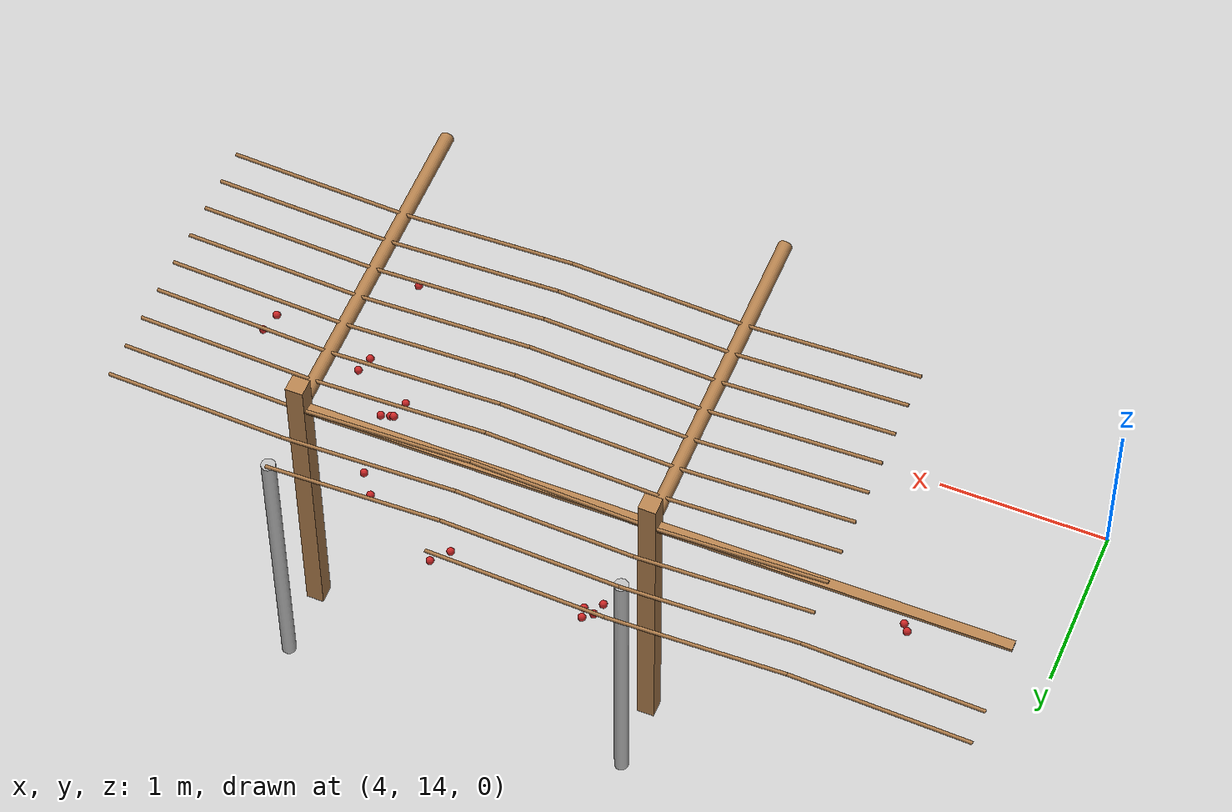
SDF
<sdf version="1.4">
 <model name="pergola">
  <include><name>post_41</name><pose>6.0 16.0 0 0 0 0</pose><uri>model://post</uri></include>
  <include><name>post_52</name><pose>8.0 16.0 0 0 0 0</pose><uri>model://post</uri></include>
  <link name="beam_30">
   <pose>5.0 16.0 1.81 0 0 0</pose>
   <collision name="collision"><geometry><box><size>2.0 0.06 0.02</size></box></geometry></collision>
   <visual name="visual">
    <geometry><box><size>2.0 0.06 0.02</size></box></geometry>
    <material><script><name>Gazebo/Wood</name></script></material>
   </visual>
   <inertial>
    <mass>5</mass>
    <inertia>
     <ixx>0.0016666666666666668</ixx>
     <ixy>0.0</ixy>
     <ixz>0.0</ixz>
     <iyy>1.6681666666666664</iyy>
     <iyz>0.0</iyz>
     <izz>1.6668333333333332</izz>
    </inertia>
   </inertial>
  </link>
  <link name="beam_41">
   <pose>7.0 16.0 1.81 0 0 0</pose>
   <collision name="collision"><geometry><box><size>2.0 0.06 0.02</size></box></geometry></collision>
   <visual name="visual">
    <geometry><box><size>2.0 0.06 0.02</size></box></geometry>
    <material><script><name>Gazebo/Wood</name></script></material>
   </visual>
   <inertial>
    <mass>5</mass>
    <inertia>
     <ixx>0.0016666666666666668</ixx>
     <ixy>0.0</ixy>
     <ixz>0.0</ixz>
     <iyy>1.6681666666666664</iyy>
     <iyz>0.0</iyz>
     <izz>1.6668333333333332</izz>
    </inertia>
   </inertial>
  </link>
  <include><name>tree_38</name><pose>6.0 16.4 0 0 0 0</pose><uri>model://tree_trunk</uri></include>
  <include><name>tree_48</name><pose>8.0 16.4 0 0 0 0</pose><uri>model://tree_trunk</uri></include>
  <link name="baseBranch_37">
   <pose>6.0 15.0 1.8 1.5707963267948966 0 0</pose>
   <collision name="collision">
    <geometry><cylinder><radius>0.04</radius><length>1.94</length></cylinder></geometry>
   </collision>
   <visual name="visual">
    <geometry><cylinder><radius>0.04</radius><length>1.94</length></cylinder></geometry>
    <material><script><name>Gazebo/WoodFloor</name></script></material>
   </visual>
   <inertial>
    <mass>10</mass>
    <inertia>
     <ixx>3.140333333333333</ixx>
     <ixy>0.0</ixy>
     <ixz>0.0</ixz>
     <iyy>3.140333333333333</iyy>
     <iyz>0.0</iyz>
     <izz>0.008</izz>
    </inertia>
   </inertial>
  </link>
  <link name="baseBranch_47">
   <pose>8.0 15.0 1.8 1.5707963267948966 0 0</pose>
   <collision name="collision">
    <geometry><cylinder><radius>0.04</radius><length>1.94</length></cylinder></geometry>
   </collision>
   <visual name="visual">
    <geometry><cylinder><radius>0.04</radius><length>1.94</length></cylinder></geometry>
    <material><script><name>Gazebo/WoodFloor</name></script></material>
   </visual>
   <inertial>
    <mass>10</mass>
    <inertia>
     <ixx>3.140333333333333</ixx>
     <ixy>0.0</ixy>
     <ixz>0.0</ixz>
     <iyy>3.140333333333333</iyy>
     <iyz>0.0</iyz>
     <izz>0.008</izz>
    </inertia>
   </inertial>
  </link>
  <link name="vine_547">
   <pose>5.5 14.63 1.85 0 -1.5208379310729538 0</pose>
   <collision name="collision">
    <geometry><cylinder><radius>0.01</radius><length>1.0012492197250393</length></cylinder></geometry>
   </collision>
   <visual name="visual">
    <geometry><cylinder><radius>0.01</radius><length>1.0012492197250393</length></cylinder></geometry>
    <material><script><name>Gazebo/WoodFloor</name></script></material>
   </visual>
   <inertial>
    <mass>5</mass>
    <inertia>
     <ixx>0.41783333333333345</ixx>
     <ixy>0.0</ixy>
     <ixz>0.0</ixz>
     <iyy>0.41783333333333345</iyy>
     <iyz>0.0</iyz>
     <izz>0.00025</izz>
    </inertia>
   </inertial>
  </link>
  <link name="vine_549">
   <pose>5.5 14.83 1.85 0 -1.5208379310729538 0</pose>
   <collision name="collision">
    <geometry><cylinder><radius>0.01</radius><length>1.0012492197250393</length></cylinder></geometry>
   </collision>
   <visual name="visual">
    <geometry><cylinder><radius>0.01</radius><length>1.0012492197250393</length></cylinder></geometry>
    <material><script><name>Gazebo/WoodFloor</name></script></material>
   </visual>
   <inertial>
    <mass>5</mass>
    <inertia>
     <ixx>0.41783333333333345</ixx>
     <ixy>0.0</ixy>
     <ixz>0.0</ixz>
     <iyy>0.41783333333333345</iyy>
     <iyz>0.0</iyz>
     <izz>0.00025</izz>
    </inertia>
   </inertial>
  </link>
  <link name="vine_551">
   <pose>5.5 15.03 1.85 0 -1.5208379310729538 0</pose>
   <collision name="collision">
    <geometry><cylinder><radius>0.01</radius><length>1.0012492197250393</length></cylinder></geometry>
   </collision>
   <visual name="visual">
    <geometry><cylinder><radius>0.01</radius><length>1.0012492197250393</length></cylinder></geometry>
    <material><script><name>Gazebo/WoodFloor</name></script></material>
   </visual>
   <inertial>
    <mass>5</mass>
    <inertia>
     <ixx>0.41783333333333345</ixx>
     <ixy>0.0</ixy>
     <ixz>0.0</ixz>
     <iyy>0.41783333333333345</iyy>
     <iyz>0.0</iyz>
     <izz>0.00025</izz>
    </inertia>
   </inertial>
  </link>
  <link name="vine_553">
   <pose>5.5 15.23 1.85 0 -1.5208379310729538 0</pose>
   <collision name="collision">
    <geometry><cylinder><radius>0.01</radius><length>1.0012492197250393</length></cylinder></geometry>
   </collision>
   <visual name="visual">
    <geometry><cylinder><radius>0.01</radius><length>1.0012492197250393</length></cylinder></geometry>
    <material><script><name>Gazebo/WoodFloor</name></script></material>
   </visual>
   <inertial>
    <mass>5</mass>
    <inertia>
     <ixx>0.41783333333333345</ixx>
     <ixy>0.0</ixy>
     <ixz>0.0</ixz>
     <iyy>0.41783333333333345</iyy>
     <iyz>0.0</iyz>
     <izz>0.00025</izz>
    </inertia>
   </inertial>
  </link>
  <link name="vine_555">
   <pose>5.5 15.43 1.85 0 -1.5208379310729538 0</pose>
   <collision name="collision">
    <geometry><cylinder><radius>0.01</radius><length>1.0012492197250393</length></cylinder></geometry>
   </collision>
   <visual name="visual">
    <geometry><cylinder><radius>0.01</radius><length>1.0012492197250393</length></cylinder></geometry>
    <material><script><name>Gazebo/WoodFloor</name></script></material>
   </visual>
   <inertial>
    <mass>5</mass>
    <inertia>
     <ixx>0.41783333333333345</ixx>
     <ixy>0.0</ixy>
     <ixz>0.0</ixz>
     <iyy>0.41783333333333345</iyy>
     <iyz>0.0</iyz>
     <izz>0.00025</izz>
    </inertia>
   </inertial>
  </link>
  <link name="vine_557">
   <pose>5.5 15.63 1.85 0 -1.5208379310729538 0</pose>
   <collision name="collision">
    <geometry><cylinder><radius>0.01</radius><length>1.0012492197250393</length></cylinder></geometry>
   </collision>
   <visual name="visual">
    <geometry><cylinder><radius>0.01</radius><length>1.0012492197250393</length></cylinder></geometry>
    <material><script><name>Gazebo/WoodFloor</name></script></material>
   </visual>
   <inertial>
    <mass>5</mass>
    <inertia>
     <ixx>0.41783333333333345</ixx>
     <ixy>0.0</ixy>
     <ixz>0.0</ixz>
     <iyy>0.41783333333333345</iyy>
     <iyz>0.0</iyz>
     <izz>0.00025</izz>
    </inertia>
   </inertial>
  </link>
  <link name="vine_559">
   <pose>5.5 15.83 1.85 0 -1.5208379310729538 0</pose>
   <collision name="collision">
    <geometry><cylinder><radius>0.01</radius><length>1.0012492197250393</length></cylinder></geometry>
   </collision>
   <visual name="visual">
    <geometry><cylinder><radius>0.01</radius><length>1.0012492197250393</length></cylinder></geometry>
    <material><script><name>Gazebo/WoodFloor</name></script></material>
   </visual>
   <inertial>
    <mass>5</mass>
    <inertia>
     <ixx>0.41783333333333345</ixx>
     <ixy>0.0</ixy>
     <ixz>0.0</ixz>
     <iyy>0.41783333333333345</iyy>
     <iyz>0.0</iyz>
     <izz>0.00025</izz>
    </inertia>
   </inertial>
  </link>
  <link name="vine_561">
   <pose>5.5 16.03 1.85 0 -1.5208379310729538 0</pose>
   <collision name="collision">
    <geometry><cylinder><radius>0.01</radius><length>1.0012492197250393</length></cylinder></geometry>
   </collision>
   <visual name="visual">
    <geometry><cylinder><radius>0.01</radius><length>1.0012492197250393</length></cylinder></geometry>
    <material><script><name>Gazebo/WoodFloor</name></script></material>
   </visual>
   <inertial>
    <mass>5</mass>
    <inertia>
     <ixx>0.41783333333333345</ixx>
     <ixy>0.0</ixy>
     <ixz>0.0</ixz>
     <iyy>0.41783333333333345</iyy>
     <iyz>0.0</iyz>
     <izz>0.00025</izz>
    </inertia>
   </inertial>
  </link>
  <link name="vine_563">
   <pose>5.5 16.23 1.85 0 -1.5208379310729538 0</pose>
   <collision name="collision">
    <geometry><cylinder><radius>0.01</radius><length>1.0012492197250393</length></cylinder></geometry>
   </collision>
   <visual name="visual">
    <geometry><cylinder><radius>0.01</radius><length>1.0012492197250393</length></cylinder></geometry>
    <material><script><name>Gazebo/WoodFloor</name></script></material>
   </visual>
   <inertial>
    <mass>5</mass>
    <inertia>
     <ixx>0.41783333333333345</ixx>
     <ixy>0.0</ixy>
     <ixz>0.0</ixz>
     <iyy>0.41783333333333345</iyy>
     <iyz>0.0</iyz>
     <izz>0.00025</izz>
    </inertia>
   </inertial>
  </link>
  <link name="vine_564">
   <pose>4.5 16.430000000000003 1.85 0 1.5208379310729538 0</pose>
   <collision name="collision">
    <geometry><cylinder><radius>0.01</radius><length>1.0012492197250393</length></cylinder></geometry>
   </collision>
   <visual name="visual">
    <geometry><cylinder><radius>0.01</radius><length>1.0012492197250393</length></cylinder></geometry>
    <material><script><name>Gazebo/WoodFloor</name></script></material>
   </visual>
   <inertial>
    <mass>5</mass>
    <inertia>
     <ixx>0.41783333333333345</ixx>
     <ixy>0.0</ixy>
     <ixz>0.0</ixz>
     <iyy>0.41783333333333345</iyy>
     <iyz>0.0</iyz>
     <izz>0.00025</izz>
    </inertia>
   </inertial>
  </link>
  <link name="vine_565">
   <pose>5.5 16.430000000000003 1.85 0 -1.5208379310729538 0</pose>
   <collision name="collision">
    <geometry><cylinder><radius>0.01</radius><length>1.0012492197250393</length></cylinder></geometry>
   </collision>
   <visual name="visual">
    <geometry><cylinder><radius>0.01</radius><length>1.0012492197250393</length></cylinder></geometry>
    <material><script><name>Gazebo/WoodFloor</name></script></material>
   </visual>
   <inertial>
    <mass>5</mass>
    <inertia>
     <ixx>0.41783333333333345</ixx>
     <ixy>0.0</ixy>
     <ixz>0.0</ixz>
     <iyy>0.41783333333333345</iyy>
     <iyz>0.0</iyz>
     <izz>0.00025</izz>
    </inertia>
   </inertial>
  </link>
  <link name="vine_566">
   <pose>4.5 16.630000000000003 1.85 0 1.5208379310729538 0</pose>
   <collision name="collision">
    <geometry><cylinder><radius>0.01</radius><length>1.0012492197250393</length></cylinder></geometry>
   </collision>
   <visual name="visual">
    <geometry><cylinder><radius>0.01</radius><length>1.0012492197250393</length></cylinder></geometry>
    <material><script><name>Gazebo/WoodFloor</name></script></material>
   </visual>
   <inertial>
    <mass>5</mass>
    <inertia>
     <ixx>0.41783333333333345</ixx>
     <ixy>0.0</ixy>
     <ixz>0.0</ixz>
     <iyy>0.41783333333333345</iyy>
     <iyz>0.0</iyz>
     <izz>0.00025</izz>
    </inertia>
   </inertial>
  </link>
  <link name="vine_567">
   <pose>5.5 16.630000000000003 1.85 0 -1.5208379310729538 0</pose>
   <collision name="collision">
    <geometry><cylinder><radius>0.01</radius><length>1.0012492197250393</length></cylinder></geometry>
   </collision>
   <visual name="visual">
    <geometry><cylinder><radius>0.01</radius><length>1.0012492197250393</length></cylinder></geometry>
    <material><script><name>Gazebo/WoodFloor</name></script></material>
   </visual>
   <inertial>
    <mass>5</mass>
    <inertia>
     <ixx>0.41783333333333345</ixx>
     <ixy>0.0</ixy>
     <ixz>0.0</ixz>
     <iyy>0.41783333333333345</iyy>
     <iyz>0.0</iyz>
     <izz>0.00025</izz>
    </inertia>
   </inertial>
  </link>
  <link name="vine_746">
   <pose>6.5 14.63 1.85 0 1.5208379310729538 0</pose>
   <collision name="collision">
    <geometry><cylinder><radius>0.01</radius><length>1.0012492197250393</length></cylinder></geometry>
   </collision>
   <visual name="visual">
    <geometry><cylinder><radius>0.01</radius><length>1.0012492197250393</length></cylinder></geometry>
    <material><script><name>Gazebo/WoodFloor</name></script></material>
   </visual>
   <inertial>
    <mass>5</mass>
    <inertia>
     <ixx>0.41783333333333345</ixx>
     <ixy>0.0</ixy>
     <ixz>0.0</ixz>
     <iyy>0.41783333333333345</iyy>
     <iyz>0.0</iyz>
     <izz>0.00025</izz>
    </inertia>
   </inertial>
  </link>
  <link name="vine_747">
   <pose>7.5 14.63 1.85 0 -1.5208379310729538 0</pose>
   <collision name="collision">
    <geometry><cylinder><radius>0.01</radius><length>1.0012492197250393</length></cylinder></geometry>
   </collision>
   <visual name="visual">
    <geometry><cylinder><radius>0.01</radius><length>1.0012492197250393</length></cylinder></geometry>
    <material><script><name>Gazebo/WoodFloor</name></script></material>
   </visual>
   <inertial>
    <mass>5</mass>
    <inertia>
     <ixx>0.41783333333333345</ixx>
     <ixy>0.0</ixy>
     <ixz>0.0</ixz>
     <iyy>0.41783333333333345</iyy>
     <iyz>0.0</iyz>
     <izz>0.00025</izz>
    </inertia>
   </inertial>
  </link>
  <link name="vine_748">
   <pose>6.5 14.83 1.85 0 1.5208379310729538 0</pose>
   <collision name="collision">
    <geometry><cylinder><radius>0.01</radius><length>1.0012492197250393</length></cylinder></geometry>
   </collision>
   <visual name="visual">
    <geometry><cylinder><radius>0.01</radius><length>1.0012492197250393</length></cylinder></geometry>
    <material><script><name>Gazebo/WoodFloor</name></script></material>
   </visual>
   <inertial>
    <mass>5</mass>
    <inertia>
     <ixx>0.41783333333333345</ixx>
     <ixy>0.0</ixy>
     <ixz>0.0</ixz>
     <iyy>0.41783333333333345</iyy>
     <iyz>0.0</iyz>
     <izz>0.00025</izz>
    </inertia>
   </inertial>
  </link>
  <link name="vine_749">
   <pose>7.5 14.83 1.85 0 -1.5208379310729538 0</pose>
   <collision name="collision">
    <geometry><cylinder><radius>0.01</radius><length>1.0012492197250393</length></cylinder></geometry>
   </collision>
   <visual name="visual">
    <geometry><cylinder><radius>0.01</radius><length>1.0012492197250393</length></cylinder></geometry>
    <material><script><name>Gazebo/WoodFloor</name></script></material>
   </visual>
   <inertial>
    <mass>5</mass>
    <inertia>
     <ixx>0.41783333333333345</ixx>
     <ixy>0.0</ixy>
     <ixz>0.0</ixz>
     <iyy>0.41783333333333345</iyy>
     <iyz>0.0</iyz>
     <izz>0.00025</izz>
    </inertia>
   </inertial>
  </link>
  <link name="vine_750">
   <pose>6.5 15.03 1.85 0 1.5208379310729538 0</pose>
   <collision name="collision">
    <geometry><cylinder><radius>0.01</radius><length>1.0012492197250393</length></cylinder></geometry>
   </collision>
   <visual name="visual">
    <geometry><cylinder><radius>0.01</radius><length>1.0012492197250393</length></cylinder></geometry>
    <material><script><name>Gazebo/WoodFloor</name></script></material>
   </visual>
   <inertial>
    <mass>5</mass>
    <inertia>
     <ixx>0.41783333333333345</ixx>
     <ixy>0.0</ixy>
     <ixz>0.0</ixz>
     <iyy>0.41783333333333345</iyy>
     <iyz>0.0</iyz>
     <izz>0.00025</izz>
    </inertia>
   </inertial>
  </link>
  <link name="vine_751">
   <pose>7.5 15.03 1.85 0 -1.5208379310729538 0</pose>
   <collision name="collision">
    <geometry><cylinder><radius>0.01</radius><length>1.0012492197250393</length></cylinder></geometry>
   </collision>
   <visual name="visual">
    <geometry><cylinder><radius>0.01</radius><length>1.0012492197250393</length></cylinder></geometry>
    <material><script><name>Gazebo/WoodFloor</name></script></material>
   </visual>
   <inertial>
    <mass>5</mass>
    <inertia>
     <ixx>0.41783333333333345</ixx>
     <ixy>0.0</ixy>
     <ixz>0.0</ixz>
     <iyy>0.41783333333333345</iyy>
     <iyz>0.0</iyz>
     <izz>0.00025</izz>
    </inertia>
   </inertial>
  </link>
  <link name="vine_752">
   <pose>6.5 15.23 1.85 0 1.5208379310729538 0</pose>
   <collision name="collision">
    <geometry><cylinder><radius>0.01</radius><length>1.0012492197250393</length></cylinder></geometry>
   </collision>
   <visual name="visual">
    <geometry><cylinder><radius>0.01</radius><length>1.0012492197250393</length></cylinder></geometry>
    <material><script><name>Gazebo/WoodFloor</name></script></material>
   </visual>
   <inertial>
    <mass>5</mass>
    <inertia>
     <ixx>0.41783333333333345</ixx>
     <ixy>0.0</ixy>
     <ixz>0.0</ixz>
     <iyy>0.41783333333333345</iyy>
     <iyz>0.0</iyz>
     <izz>0.00025</izz>
    </inertia>
   </inertial>
  </link>
  <link name="vine_753">
   <pose>7.5 15.23 1.85 0 -1.5208379310729538 0</pose>
   <collision name="collision">
    <geometry><cylinder><radius>0.01</radius><length>1.0012492197250393</length></cylinder></geometry>
   </collision>
   <visual name="visual">
    <geometry><cylinder><radius>0.01</radius><length>1.0012492197250393</length></cylinder></geometry>
    <material><script><name>Gazebo/WoodFloor</name></script></material>
   </visual>
   <inertial>
    <mass>5</mass>
    <inertia>
     <ixx>0.41783333333333345</ixx>
     <ixy>0.0</ixy>
     <ixz>0.0</ixz>
     <iyy>0.41783333333333345</iyy>
     <iyz>0.0</iyz>
     <izz>0.00025</izz>
    </inertia>
   </inertial>
  </link>
  <link name="vine_754">
   <pose>6.5 15.43 1.85 0 1.5208379310729538 0</pose>
   <collision name="collision">
    <geometry><cylinder><radius>0.01</radius><length>1.0012492197250393</length></cylinder></geometry>
   </collision>
   <visual name="visual">
    <geometry><cylinder><radius>0.01</radius><length>1.0012492197250393</length></cylinder></geometry>
    <material><script><name>Gazebo/WoodFloor</name></script></material>
   </visual>
   <inertial>
    <mass>5</mass>
    <inertia>
     <ixx>0.41783333333333345</ixx>
     <ixy>0.0</ixy>
     <ixz>0.0</ixz>
     <iyy>0.41783333333333345</iyy>
     <iyz>0.0</iyz>
     <izz>0.00025</izz>
    </inertia>
   </inertial>
  </link>
  <link name="vine_755">
   <pose>7.5 15.43 1.85 0 -1.5208379310729538 0</pose>
   <collision name="collision">
    <geometry><cylinder><radius>0.01</radius><length>1.0012492197250393</length></cylinder></geometry>
   </collision>
   <visual name="visual">
    <geometry><cylinder><radius>0.01</radius><length>1.0012492197250393</length></cylinder></geometry>
    <material><script><name>Gazebo/WoodFloor</name></script></material>
   </visual>
   <inertial>
    <mass>5</mass>
    <inertia>
     <ixx>0.41783333333333345</ixx>
     <ixy>0.0</ixy>
     <ixz>0.0</ixz>
     <iyy>0.41783333333333345</iyy>
     <iyz>0.0</iyz>
     <izz>0.00025</izz>
    </inertia>
   </inertial>
  </link>
  <link name="vine_756">
   <pose>6.5 15.63 1.85 0 1.5208379310729538 0</pose>
   <collision name="collision">
    <geometry><cylinder><radius>0.01</radius><length>1.0012492197250393</length></cylinder></geometry>
   </collision>
   <visual name="visual">
    <geometry><cylinder><radius>0.01</radius><length>1.0012492197250393</length></cylinder></geometry>
    <material><script><name>Gazebo/WoodFloor</name></script></material>
   </visual>
   <inertial>
    <mass>5</mass>
    <inertia>
     <ixx>0.41783333333333345</ixx>
     <ixy>0.0</ixy>
     <ixz>0.0</ixz>
     <iyy>0.41783333333333345</iyy>
     <iyz>0.0</iyz>
     <izz>0.00025</izz>
    </inertia>
   </inertial>
  </link>
  <link name="vine_757">
   <pose>7.5 15.63 1.85 0 -1.5208379310729538 0</pose>
   <collision name="collision">
    <geometry><cylinder><radius>0.01</radius><length>1.0012492197250393</length></cylinder></geometry>
   </collision>
   <visual name="visual">
    <geometry><cylinder><radius>0.01</radius><length>1.0012492197250393</length></cylinder></geometry>
    <material><script><name>Gazebo/WoodFloor</name></script></material>
   </visual>
   <inertial>
    <mass>5</mass>
    <inertia>
     <ixx>0.41783333333333345</ixx>
     <ixy>0.0</ixy>
     <ixz>0.0</ixz>
     <iyy>0.41783333333333345</iyy>
     <iyz>0.0</iyz>
     <izz>0.00025</izz>
    </inertia>
   </inertial>
  </link>
  <link name="vine_758">
   <pose>6.5 15.83 1.85 0 1.5208379310729538 0</pose>
   <collision name="collision">
    <geometry><cylinder><radius>0.01</radius><length>1.0012492197250393</length></cylinder></geometry>
   </collision>
   <visual name="visual">
    <geometry><cylinder><radius>0.01</radius><length>1.0012492197250393</length></cylinder></geometry>
    <material><script><name>Gazebo/WoodFloor</name></script></material>
   </visual>
   <inertial>
    <mass>5</mass>
    <inertia>
     <ixx>0.41783333333333345</ixx>
     <ixy>0.0</ixy>
     <ixz>0.0</ixz>
     <iyy>0.41783333333333345</iyy>
     <iyz>0.0</iyz>
     <izz>0.00025</izz>
    </inertia>
   </inertial>
  </link>
  <link name="vine_759">
   <pose>7.5 15.83 1.85 0 -1.5208379310729538 0</pose>
   <collision name="collision">
    <geometry><cylinder><radius>0.01</radius><length>1.0012492197250393</length></cylinder></geometry>
   </collision>
   <visual name="visual">
    <geometry><cylinder><radius>0.01</radius><length>1.0012492197250393</length></cylinder></geometry>
    <material><script><name>Gazebo/WoodFloor</name></script></material>
   </visual>
   <inertial>
    <mass>5</mass>
    <inertia>
     <ixx>0.41783333333333345</ixx>
     <ixy>0.0</ixy>
     <ixz>0.0</ixz>
     <iyy>0.41783333333333345</iyy>
     <iyz>0.0</iyz>
     <izz>0.00025</izz>
    </inertia>
   </inertial>
  </link>
  <link name="vine_760">
   <pose>6.5 16.03 1.85 0 1.5208379310729538 0</pose>
   <collision name="collision">
    <geometry><cylinder><radius>0.01</radius><length>1.0012492197250393</length></cylinder></geometry>
   </collision>
   <visual name="visual">
    <geometry><cylinder><radius>0.01</radius><length>1.0012492197250393</length></cylinder></geometry>
    <material><script><name>Gazebo/WoodFloor</name></script></material>
   </visual>
   <inertial>
    <mass>5</mass>
    <inertia>
     <ixx>0.41783333333333345</ixx>
     <ixy>0.0</ixy>
     <ixz>0.0</ixz>
     <iyy>0.41783333333333345</iyy>
     <iyz>0.0</iyz>
     <izz>0.00025</izz>
    </inertia>
   </inertial>
  </link>
  <link name="vine_761">
   <pose>7.5 16.03 1.85 0 -1.5208379310729538 0</pose>
   <collision name="collision">
    <geometry><cylinder><radius>0.01</radius><length>1.0012492197250393</length></cylinder></geometry>
   </collision>
   <visual name="visual">
    <geometry><cylinder><radius>0.01</radius><length>1.0012492197250393</length></cylinder></geometry>
    <material><script><name>Gazebo/WoodFloor</name></script></material>
   </visual>
   <inertial>
    <mass>5</mass>
    <inertia>
     <ixx>0.41783333333333345</ixx>
     <ixy>0.0</ixy>
     <ixz>0.0</ixz>
     <iyy>0.41783333333333345</iyy>
     <iyz>0.0</iyz>
     <izz>0.00025</izz>
    </inertia>
   </inertial>
  </link>
  <link name="vine_762">
   <pose>6.5 16.23 1.85 0 1.5208379310729538 0</pose>
   <collision name="collision">
    <geometry><cylinder><radius>0.01</radius><length>1.0012492197250393</length></cylinder></geometry>
   </collision>
   <visual name="visual">
    <geometry><cylinder><radius>0.01</radius><length>1.0012492197250393</length></cylinder></geometry>
    <material><script><name>Gazebo/WoodFloor</name></script></material>
   </visual>
   <inertial>
    <mass>5</mass>
    <inertia>
     <ixx>0.41783333333333345</ixx>
     <ixy>0.0</ixy>
     <ixz>0.0</ixz>
     <iyy>0.41783333333333345</iyy>
     <iyz>0.0</iyz>
     <izz>0.00025</izz>
    </inertia>
   </inertial>
  </link>
  <link name="vine_763">
   <pose>7.5 16.23 1.85 0 -1.5208379310729538 0</pose>
   <collision name="collision">
    <geometry><cylinder><radius>0.01</radius><length>1.0012492197250393</length></cylinder></geometry>
   </collision>
   <visual name="visual">
    <geometry><cylinder><radius>0.01</radius><length>1.0012492197250393</length></cylinder></geometry>
    <material><script><name>Gazebo/WoodFloor</name></script></material>
   </visual>
   <inertial>
    <mass>5</mass>
    <inertia>
     <ixx>0.41783333333333345</ixx>
     <ixy>0.0</ixy>
     <ixz>0.0</ixz>
     <iyy>0.41783333333333345</iyy>
     <iyz>0.0</iyz>
     <izz>0.00025</izz>
    </inertia>
   </inertial>
  </link>
  <link name="vine_764">
   <pose>6.5 16.430000000000003 1.85 0 1.5208379310729538 0</pose>
   <collision name="collision">
    <geometry><cylinder><radius>0.01</radius><length>1.0012492197250393</length></cylinder></geometry>
   </collision>
   <visual name="visual">
    <geometry><cylinder><radius>0.01</radius><length>1.0012492197250393</length></cylinder></geometry>
    <material><script><name>Gazebo/WoodFloor</name></script></material>
   </visual>
   <inertial>
    <mass>5</mass>
    <inertia>
     <ixx>0.41783333333333345</ixx>
     <ixy>0.0</ixy>
     <ixz>0.0</ixz>
     <iyy>0.41783333333333345</iyy>
     <iyz>0.0</iyz>
     <izz>0.00025</izz>
    </inertia>
   </inertial>
  </link>
  <link name="vine_765">
   <pose>7.5 16.430000000000003 1.85 0 -1.5208379310729538 0</pose>
   <collision name="collision">
    <geometry><cylinder><radius>0.01</radius><length>1.0012492197250393</length></cylinder></geometry>
   </collision>
   <visual name="visual">
    <geometry><cylinder><radius>0.01</radius><length>1.0012492197250393</length></cylinder></geometry>
    <material><script><name>Gazebo/WoodFloor</name></script></material>
   </visual>
   <inertial>
    <mass>5</mass>
    <inertia>
     <ixx>0.41783333333333345</ixx>
     <ixy>0.0</ixy>
     <ixz>0.0</ixz>
     <iyy>0.41783333333333345</iyy>
     <iyz>0.0</iyz>
     <izz>0.00025</izz>
    </inertia>
   </inertial>
  </link>
  <link name="vine_766">
   <pose>6.5 16.630000000000003 1.85 0 1.5208379310729538 0</pose>
   <collision name="collision">
    <geometry><cylinder><radius>0.01</radius><length>1.0012492197250393</length></cylinder></geometry>
   </collision>
   <visual name="visual">
    <geometry><cylinder><radius>0.01</radius><length>1.0012492197250393</length></cylinder></geometry>
    <material><script><name>Gazebo/WoodFloor</name></script></material>
   </visual>
   <inertial>
    <mass>5</mass>
    <inertia>
     <ixx>0.41783333333333345</ixx>
     <ixy>0.0</ixy>
     <ixz>0.0</ixz>
     <iyy>0.41783333333333345</iyy>
     <iyz>0.0</iyz>
     <izz>0.00025</izz>
    </inertia>
   </inertial>
  </link>
  <link name="vine_946">
   <pose>8.5 14.63 1.85 0 1.5208379310729538 0</pose>
   <collision name="collision">
    <geometry><cylinder><radius>0.01</radius><length>1.0012492197250393</length></cylinder></geometry>
   </collision>
   <visual name="visual">
    <geometry><cylinder><radius>0.01</radius><length>1.0012492197250393</length></cylinder></geometry>
    <material><script><name>Gazebo/WoodFloor</name></script></material>
   </visual>
   <inertial>
    <mass>5</mass>
    <inertia>
     <ixx>0.41783333333333345</ixx>
     <ixy>0.0</ixy>
     <ixz>0.0</ixz>
     <iyy>0.41783333333333345</iyy>
     <iyz>0.0</iyz>
     <izz>0.00025</izz>
    </inertia>
   </inertial>
  </link>
  <link name="vine_948">
   <pose>8.5 14.83 1.85 0 1.5208379310729538 0</pose>
   <collision name="collision">
    <geometry><cylinder><radius>0.01</radius><length>1.0012492197250393</length></cylinder></geometry>
   </collision>
   <visual name="visual">
    <geometry><cylinder><radius>0.01</radius><length>1.0012492197250393</length></cylinder></geometry>
    <material><script><name>Gazebo/WoodFloor</name></script></material>
   </visual>
   <inertial>
    <mass>5</mass>
    <inertia>
     <ixx>0.41783333333333345</ixx>
     <ixy>0.0</ixy>
     <ixz>0.0</ixz>
     <iyy>0.41783333333333345</iyy>
     <iyz>0.0</iyz>
     <izz>0.00025</izz>
    </inertia>
   </inertial>
  </link>
  <link name="vine_950">
   <pose>8.5 15.03 1.85 0 1.5208379310729538 0</pose>
   <collision name="collision">
    <geometry><cylinder><radius>0.01</radius><length>1.0012492197250393</length></cylinder></geometry>
   </collision>
   <visual name="visual">
    <geometry><cylinder><radius>0.01</radius><length>1.0012492197250393</length></cylinder></geometry>
    <material><script><name>Gazebo/WoodFloor</name></script></material>
   </visual>
   <inertial>
    <mass>5</mass>
    <inertia>
     <ixx>0.41783333333333345</ixx>
     <ixy>0.0</ixy>
     <ixz>0.0</ixz>
     <iyy>0.41783333333333345</iyy>
     <iyz>0.0</iyz>
     <izz>0.00025</izz>
    </inertia>
   </inertial>
  </link>
  <link name="vine_952">
   <pose>8.5 15.23 1.85 0 1.5208379310729538 0</pose>
   <collision name="collision">
    <geometry><cylinder><radius>0.01</radius><length>1.0012492197250393</length></cylinder></geometry>
   </collision>
   <visual name="visual">
    <geometry><cylinder><radius>0.01</radius><length>1.0012492197250393</length></cylinder></geometry>
    <material><script><name>Gazebo/WoodFloor</name></script></material>
   </visual>
   <inertial>
    <mass>5</mass>
    <inertia>
     <ixx>0.41783333333333345</ixx>
     <ixy>0.0</ixy>
     <ixz>0.0</ixz>
     <iyy>0.41783333333333345</iyy>
     <iyz>0.0</iyz>
     <izz>0.00025</izz>
    </inertia>
   </inertial>
  </link>
  <link name="vine_954">
   <pose>8.5 15.43 1.85 0 1.5208379310729538 0</pose>
   <collision name="collision">
    <geometry><cylinder><radius>0.01</radius><length>1.0012492197250393</length></cylinder></geometry>
   </collision>
   <visual name="visual">
    <geometry><cylinder><radius>0.01</radius><length>1.0012492197250393</length></cylinder></geometry>
    <material><script><name>Gazebo/WoodFloor</name></script></material>
   </visual>
   <inertial>
    <mass>5</mass>
    <inertia>
     <ixx>0.41783333333333345</ixx>
     <ixy>0.0</ixy>
     <ixz>0.0</ixz>
     <iyy>0.41783333333333345</iyy>
     <iyz>0.0</iyz>
     <izz>0.00025</izz>
    </inertia>
   </inertial>
  </link>
  <link name="vine_956">
   <pose>8.5 15.63 1.85 0 1.5208379310729538 0</pose>
   <collision name="collision">
    <geometry><cylinder><radius>0.01</radius><length>1.0012492197250393</length></cylinder></geometry>
   </collision>
   <visual name="visual">
    <geometry><cylinder><radius>0.01</radius><length>1.0012492197250393</length></cylinder></geometry>
    <material><script><name>Gazebo/WoodFloor</name></script></material>
   </visual>
   <inertial>
    <mass>5</mass>
    <inertia>
     <ixx>0.41783333333333345</ixx>
     <ixy>0.0</ixy>
     <ixz>0.0</ixz>
     <iyy>0.41783333333333345</iyy>
     <iyz>0.0</iyz>
     <izz>0.00025</izz>
    </inertia>
   </inertial>
  </link>
  <link name="vine_958">
   <pose>8.5 15.83 1.85 0 1.5208379310729538 0</pose>
   <collision name="collision">
    <geometry><cylinder><radius>0.01</radius><length>1.0012492197250393</length></cylinder></geometry>
   </collision>
   <visual name="visual">
    <geometry><cylinder><radius>0.01</radius><length>1.0012492197250393</length></cylinder></geometry>
    <material><script><name>Gazebo/WoodFloor</name></script></material>
   </visual>
   <inertial>
    <mass>5</mass>
    <inertia>
     <ixx>0.41783333333333345</ixx>
     <ixy>0.0</ixy>
     <ixz>0.0</ixz>
     <iyy>0.41783333333333345</iyy>
     <iyz>0.0</iyz>
     <izz>0.00025</izz>
    </inertia>
   </inertial>
  </link>
  <link name="vine_960">
   <pose>8.5 16.03 1.85 0 1.5208379310729538 0</pose>
   <collision name="collision">
    <geometry><cylinder><radius>0.01</radius><length>1.0012492197250393</length></cylinder></geometry>
   </collision>
   <visual name="visual">
    <geometry><cylinder><radius>0.01</radius><length>1.0012492197250393</length></cylinder></geometry>
    <material><script><name>Gazebo/WoodFloor</name></script></material>
   </visual>
   <inertial>
    <mass>5</mass>
    <inertia>
     <ixx>0.41783333333333345</ixx>
     <ixy>0.0</ixy>
     <ixz>0.0</ixz>
     <iyy>0.41783333333333345</iyy>
     <iyz>0.0</iyz>
     <izz>0.00025</izz>
    </inertia>
   </inertial>
  </link>
  <link name="vine_962">
   <pose>8.5 16.23 1.85 0 1.5208379310729538 0</pose>
   <collision name="collision">
    <geometry><cylinder><radius>0.01</radius><length>1.0012492197250393</length></cylinder></geometry>
   </collision>
   <visual name="visual">
    <geometry><cylinder><radius>0.01</radius><length>1.0012492197250393</length></cylinder></geometry>
    <material><script><name>Gazebo/WoodFloor</name></script></material>
   </visual>
   <inertial>
    <mass>5</mass>
    <inertia>
     <ixx>0.41783333333333345</ixx>
     <ixy>0.0</ixy>
     <ixz>0.0</ixz>
     <iyy>0.41783333333333345</iyy>
     <iyz>0.0</iyz>
     <izz>0.00025</izz>
    </inertia>
   </inertial>
  </link>
  <link name="fruit_19">
   <pose>8.442616690583252 15.356971611707417 1.5877723275106295 0 0 0</pose>
   <collision name="fruit_collision_19"><geometry><sphere><radius>0.022</radius></sphere></geometry></collision>
   <visual name="visual">
    <geometry><sphere><radius>0.022</radius></sphere></geometry>
    <material><script><name>Gazebo/Red</name></script></material>
   </visual>
   <inertial>
    <mass>0.05</mass>
    <inertia>
     <ixx>9.679999999999999e-06</ixx>
     <ixy>0.0</ixy>
     <ixz>0.0</ixz>
     <iyy>9.679999999999999e-06</iyy>
     <iyz>0.0</iyz>
     <izz>9.679999999999999e-06</izz>
    </inertia>
   </inertial>
   <sensor name="fruit_contact_19" type="contact">
    <contact><collision>fruit_collision_19</collision></contact>
   </sensor>
  </link>
  <link name="fruit_117">
   <pose>6.0666434239834865 16.48100678643073 1.69264284746614 0 0 0</pose>
   <collision name="fruit_collision_117"><geometry><sphere><radius>0.022</radius></sphere></geometry></collision>
   <visual name="visual">
    <geometry><sphere><radius>0.022</radius></sphere></geometry>
    <material><script><name>Gazebo/Red</name></script></material>
   </visual>
   <inertial>
    <mass>0.05</mass>
    <inertia>
     <ixx>9.679999999999999e-06</ixx>
     <ixy>0.0</ixy>
     <ixz>0.0</ixz>
     <iyy>9.679999999999999e-06</iyy>
     <iyz>0.0</iyz>
     <izz>9.679999999999999e-06</izz>
    </inertia>
   </inertial>
   <sensor name="fruit_contact_117" type="contact">
    <contact><collision>fruit_collision_117</collision></contact>
   </sensor>
  </link>
  <link name="fruit_189">
   <pose>7.817826972196143 15.502216072331228 1.6931981773427427 0 0 0</pose>
   <collision name="fruit_collision_189"><geometry><sphere><radius>0.022</radius></sphere></geometry></collision>
   <visual name="visual">
    <geometry><sphere><radius>0.022</radius></sphere></geometry>
    <material><script><name>Gazebo/Red</name></script></material>
   </visual>
   <inertial>
    <mass>0.05</mass>
    <inertia>
     <ixx>9.679999999999999e-06</ixx>
     <ixy>0.0</ixy>
     <ixz>0.0</ixz>
     <iyy>9.679999999999999e-06</iyy>
     <iyz>0.0</iyz>
     <izz>9.679999999999999e-06</izz>
    </inertia>
   </inertial>
   <sensor name="fruit_contact_189" type="contact">
    <contact><collision>fruit_collision_189</collision></contact>
   </sensor>
  </link>
  <link name="fruit_193">
   <pose>7.462236703074206 16.300852080694984 1.6786738913316612 0 0 0</pose>
   <collision name="fruit_collision_193"><geometry><sphere><radius>0.022</radius></sphere></geometry></collision>
   <visual name="visual">
    <geometry><sphere><radius>0.022</radius></sphere></geometry>
    <material><script><name>Gazebo/Red</name></script></material>
   </visual>
   <inertial>
    <mass>0.05</mass>
    <inertia>
     <ixx>9.679999999999999e-06</ixx>
     <ixy>0.0</ixy>
     <ixz>0.0</ixz>
     <iyy>9.679999999999999e-06</iyy>
     <iyz>0.0</iyz>
     <izz>9.679999999999999e-06</izz>
    </inertia>
   </inertial>
   <sensor name="fruit_contact_193" type="contact">
    <contact><collision>fruit_collision_193</collision></contact>
   </sensor>
  </link>
  <link name="fruit_217">
   <pose>7.7582986380571075 14.982428893662808 1.7314418763682746 0 0 0</pose>
   <collision name="fruit_collision_217"><geometry><sphere><radius>0.022</radius></sphere></geometry></collision>
   <visual name="visual">
    <geometry><sphere><radius>0.022</radius></sphere></geometry>
    <material><script><name>Gazebo/Red</name></script></material>
   </visual>
   <inertial>
    <mass>0.05</mass>
    <inertia>
     <ixx>9.679999999999999e-06</ixx>
     <ixy>0.0</ixy>
     <ixz>0.0</ixz>
     <iyy>9.679999999999999e-06</iyy>
     <iyz>0.0</iyz>
     <izz>9.679999999999999e-06</izz>
    </inertia>
   </inertial>
   <sensor name="fruit_contact_217" type="contact">
    <contact><collision>fruit_collision_217</collision></contact>
   </sensor>
  </link>
  <link name="fruit_284">
   <pose>7.534354968448222 16.216000625347878 1.7321844396650583 0 0 0</pose>
   <collision name="fruit_collision_284"><geometry><sphere><radius>0.022</radius></sphere></geometry></collision>
   <visual name="visual">
    <geometry><sphere><radius>0.022</radius></sphere></geometry>
    <material><script><name>Gazebo/Red</name></script></material>
   </visual>
   <inertial>
    <mass>0.05</mass>
    <inertia>
     <ixx>9.679999999999999e-06</ixx>
     <ixy>0.0</ixy>
     <ixz>0.0</ixz>
     <iyy>9.679999999999999e-06</iyy>
     <iyz>0.0</iyz>
     <izz>9.679999999999999e-06</izz>
    </inertia>
   </inertial>
   <sensor name="fruit_contact_284" type="contact">
    <contact><collision>fruit_collision_284</collision></contact>
   </sensor>
  </link>
  <link name="fruit_324">
   <pose>7.491811387293541 15.761660148420672 1.7909878233148822 0 0 0</pose>
   <collision name="fruit_collision_324"><geometry><sphere><radius>0.022</radius></sphere></geometry></collision>
   <visual name="visual">
    <geometry><sphere><radius>0.022</radius></sphere></geometry>
    <material><script><name>Gazebo/Red</name></script></material>
   </visual>
   <inertial>
    <mass>0.05</mass>
    <inertia>
     <ixx>9.679999999999999e-06</ixx>
     <ixy>0.0</ixy>
     <ixz>0.0</ixz>
     <iyy>9.679999999999999e-06</iyy>
     <iyz>0.0</iyz>
     <izz>9.679999999999999e-06</izz>
    </inertia>
   </inertial>
   <sensor name="fruit_contact_324" type="contact">
    <contact><collision>fruit_collision_324</collision></contact>
   </sensor>
  </link>
  <link name="fruit_352">
   <pose>6.955970205424763 16.41891273370682 1.5942769866527888 0 0 0</pose>
   <collision name="fruit_collision_352"><geometry><sphere><radius>0.022</radius></sphere></geometry></collision>
   <visual name="visual">
    <geometry><sphere><radius>0.022</radius></sphere></geometry>
    <material><script><name>Gazebo/Red</name></script></material>
   </visual>
   <inertial>
    <mass>0.05</mass>
    <inertia>
     <ixx>9.679999999999999e-06</ixx>
     <ixy>0.0</ixy>
     <ixz>0.0</ixz>
     <iyy>9.679999999999999e-06</iyy>
     <iyz>0.0</iyz>
     <izz>9.679999999999999e-06</izz>
    </inertia>
   </inertial>
   <sensor name="fruit_contact_352" type="contact">
    <contact><collision>fruit_collision_352</collision></contact>
   </sensor>
  </link>
  <link name="fruit_432">
   <pose>7.589735838802487 15.869743689944238 1.7724460153128156 0 0 0</pose>
   <collision name="fruit_collision_432"><geometry><sphere><radius>0.022</radius></sphere></geometry></collision>
   <visual name="visual">
    <geometry><sphere><radius>0.022</radius></sphere></geometry>
    <material><script><name>Gazebo/Red</name></script></material>
   </visual>
   <inertial>
    <mass>0.05</mass>
    <inertia>
     <ixx>9.679999999999999e-06</ixx>
     <ixy>0.0</ixy>
     <ixz>0.0</ixz>
     <iyy>9.679999999999999e-06</iyy>
     <iyz>0.0</iyz>
     <izz>9.679999999999999e-06</izz>
    </inertia>
   </inertial>
   <sensor name="fruit_contact_432" type="contact">
    <contact><collision>fruit_collision_432</collision></contact>
   </sensor>
  </link>
  <link name="fruit_460">
   <pose>4.585909326799514 16.007769596722966 1.6909425556879492 0 0 0</pose>
   <collision name="fruit_collision_460"><geometry><sphere><radius>0.022</radius></sphere></geometry></collision>
   <visual name="visual">
    <geometry><sphere><radius>0.022</radius></sphere></geometry>
    <material><script><name>Gazebo/Red</name></script></material>
   </visual>
   <inertial>
    <mass>0.05</mass>
    <inertia>
     <ixx>9.679999999999999e-06</ixx>
     <ixy>0.0</ixy>
     <ixz>0.0</ixz>
     <iyy>9.679999999999999e-06</iyy>
     <iyz>0.0</iyz>
     <izz>9.679999999999999e-06</izz>
    </inertia>
   </inertial>
   <sensor name="fruit_contact_460" type="contact">
    <contact><collision>fruit_collision_460</collision></contact>
   </sensor>
  </link>
  <link name="fruit_540">
   <pose>8.476745303863437 15.46076028234153 1.5683957454030097 0 0 0</pose>
   <collision name="fruit_collision_540"><geometry><sphere><radius>0.022</radius></sphere></geometry></collision>
   <visual name="visual">
    <geometry><sphere><radius>0.022</radius></sphere></geometry>
    <material><script><name>Gazebo/Red</name></script></material>
   </visual>
   <inertial>
    <mass>0.05</mass>
    <inertia>
     <ixx>9.679999999999999e-06</ixx>
     <ixy>0.0</ixy>
     <ixz>0.0</ixz>
     <iyy>9.679999999999999e-06</iyy>
     <iyz>0.0</iyz>
     <izz>9.679999999999999e-06</izz>
    </inertia>
   </inertial>
   <sensor name="fruit_contact_540" type="contact">
    <contact><collision>fruit_collision_540</collision></contact>
   </sensor>
  </link>
  <link name="fruit_542">
   <pose>7.852225483610117 15.58223877472403 1.6725344659329173 0 0 0</pose>
   <collision name="fruit_collision_542"><geometry><sphere><radius>0.022</radius></sphere></geometry></collision>
   <visual name="visual">
    <geometry><sphere><radius>0.022</radius></sphere></geometry>
    <material><script><name>Gazebo/Red</name></script></material>
   </visual>
   <inertial>
    <mass>0.05</mass>
    <inertia>
     <ixx>9.679999999999999e-06</ixx>
     <ixy>0.0</ixy>
     <ixz>0.0</ixz>
     <iyy>9.679999999999999e-06</iyy>
     <iyz>0.0</iyz>
     <izz>9.679999999999999e-06</izz>
    </inertia>
   </inertial>
   <sensor name="fruit_contact_542" type="contact">
    <contact><collision>fruit_collision_542</collision></contact>
   </sensor>
  </link>
  <link name="fruit_620">
   <pose>4.556127564005493 16.04576237792051 1.6895760552201502 0 0 0</pose>
   <collision name="fruit_collision_620"><geometry><sphere><radius>0.022</radius></sphere></geometry></collision>
   <visual name="visual">
    <geometry><sphere><radius>0.022</radius></sphere></geometry>
    <material><script><name>Gazebo/Red</name></script></material>
   </visual>
   <inertial>
    <mass>0.05</mass>
    <inertia>
     <ixx>9.679999999999999e-06</ixx>
     <ixy>0.0</ixy>
     <ixz>0.0</ixz>
     <iyy>9.679999999999999e-06</iyy>
     <iyz>0.0</iyz>
     <izz>9.679999999999999e-06</izz>
    </inertia>
   </inertial>
   <sensor name="fruit_contact_620" type="contact">
    <contact><collision>fruit_collision_620</collision></contact>
   </sensor>
  </link>
  <link name="fruit_681">
   <pose>6.142135527090853 16.589207077739378 1.6807779908688745 0 0 0</pose>
   <collision name="fruit_collision_681"><geometry><sphere><radius>0.022</radius></sphere></geometry></collision>
   <visual name="visual">
    <geometry><sphere><radius>0.022</radius></sphere></geometry>
    <material><script><name>Gazebo/Red</name></script></material>
   </visual>
   <inertial>
    <mass>0.05</mass>
    <inertia>
     <ixx>9.679999999999999e-06</ixx>
     <ixy>0.0</ixy>
     <ixz>0.0</ixz>
     <iyy>9.679999999999999e-06</iyy>
     <iyz>0.0</iyz>
     <izz>9.679999999999999e-06</izz>
    </inertia>
   </inertial>
   <sensor name="fruit_contact_681" type="contact">
    <contact><collision>fruit_collision_681</collision></contact>
   </sensor>
  </link>
  <link name="fruit_730">
   <pose>7.032681757809235 16.51233708913374 1.5941813851214561 0 0 0</pose>
   <collision name="fruit_collision_730"><geometry><sphere><radius>0.022</radius></sphere></geometry></collision>
   <visual name="visual">
    <geometry><sphere><radius>0.022</radius></sphere></geometry>
    <material><script><name>Gazebo/Red</name></script></material>
   </visual>
   <inertial>
    <mass>0.05</mass>
    <inertia>
     <ixx>9.679999999999999e-06</ixx>
     <ixy>0.0</ixy>
     <ixz>0.0</ixz>
     <iyy>9.679999999999999e-06</iyy>
     <iyz>0.0</iyz>
     <izz>9.679999999999999e-06</izz>
    </inertia>
   </inertial>
   <sensor name="fruit_contact_730" type="contact">
    <contact><collision>fruit_collision_730</collision></contact>
   </sensor>
  </link>
  <link name="fruit_791">
   <pose>6.094692231607131 16.543047028616456 1.6729682893822988 0 0 0</pose>
   <collision name="fruit_collision_791"><geometry><sphere><radius>0.022</radius></sphere></geometry></collision>
   <visual name="visual">
    <geometry><sphere><radius>0.022</radius></sphere></geometry>
    <material><script><name>Gazebo/Red</name></script></material>
   </visual>
   <inertial>
    <mass>0.05</mass>
    <inertia>
     <ixx>9.679999999999999e-06</ixx>
     <ixy>0.0</ixy>
     <ixz>0.0</ixz>
     <iyy>9.679999999999999e-06</iyy>
     <iyz>0.0</iyz>
     <izz>9.679999999999999e-06</izz>
    </inertia>
   </inertial>
   <sensor name="fruit_contact_791" type="contact">
    <contact><collision>fruit_collision_791</collision></contact>
   </sensor>
  </link>
  <link name="fruit_854">
   <pose>7.519454034644898 15.85706663096736 1.781991214717731 0 0 0</pose>
   <collision name="fruit_collision_854"><geometry><sphere><radius>0.022</radius></sphere></geometry></collision>
   <visual name="visual">
    <geometry><sphere><radius>0.022</radius></sphere></geometry>
    <material><script><name>Gazebo/Red</name></script></material>
   </visual>
   <inertial>
    <mass>0.05</mass>
    <inertia>
     <ixx>9.679999999999999e-06</ixx>
     <ixy>0.0</ixy>
     <ixz>0.0</ixz>
     <iyy>9.679999999999999e-06</iyy>
     <iyz>0.0</iyz>
     <izz>9.679999999999999e-06</izz>
    </inertia>
   </inertial>
   <sensor name="fruit_contact_854" type="contact">
    <contact><collision>fruit_collision_854</collision></contact>
   </sensor>
  </link>
  <link name="fruit_897">
   <pose>7.540310254328397 15.85329655540214 1.7697087600943262 0 0 0</pose>
   <collision name="fruit_collision_897"><geometry><sphere><radius>0.022</radius></sphere></geometry></collision>
   <visual name="visual">
    <geometry><sphere><radius>0.022</radius></sphere></geometry>
    <material><script><name>Gazebo/Red</name></script></material>
   </visual>
   <inertial>
    <mass>0.05</mass>
    <inertia>
     <ixx>9.679999999999999e-06</ixx>
     <ixy>0.0</ixy>
     <ixz>0.0</ixz>
     <iyy>9.679999999999999e-06</iyy>
     <iyz>0.0</iyz>
     <izz>9.679999999999999e-06</izz>
    </inertia>
   </inertial>
   <sensor name="fruit_contact_897" type="contact">
    <contact><collision>fruit_collision_897</collision></contact>
   </sensor>
  </link>
  <link name="fruit_963">
   <pose>6.151799318765597 16.535350677289845 1.6873171948033152 0 0 0</pose>
   <collision name="fruit_collision_963"><geometry><sphere><radius>0.022</radius></sphere></geometry></collision>
   <visual name="visual">
    <geometry><sphere><radius>0.022</radius></sphere></geometry>
    <material><script><name>Gazebo/Red</name></script></material>
   </visual>
   <inertial>
    <mass>0.05</mass>
    <inertia>
     <ixx>9.679999999999999e-06</ixx>
     <ixy>0.0</ixy>
     <ixz>0.0</ixz>
     <iyy>9.679999999999999e-06</iyy>
     <iyz>0.0</iyz>
     <izz>9.679999999999999e-06</izz>
    </inertia>
   </inertial>
   <sensor name="fruit_contact_963" type="contact">
    <contact><collision>fruit_collision_963</collision></contact>
   </sensor>
  </link>
 </model>
</sdf>
